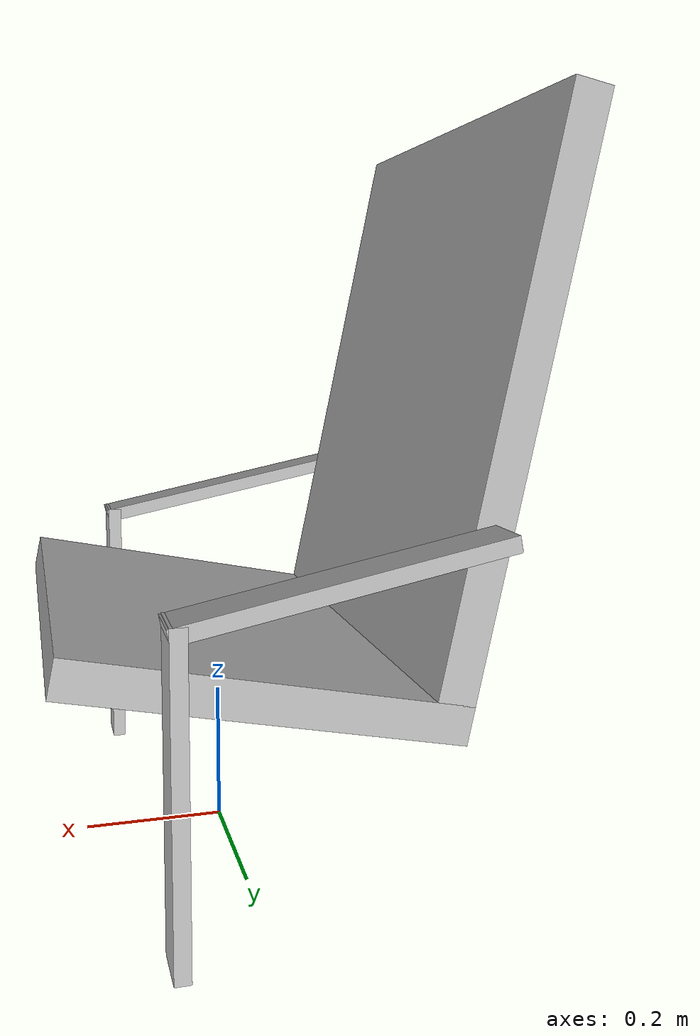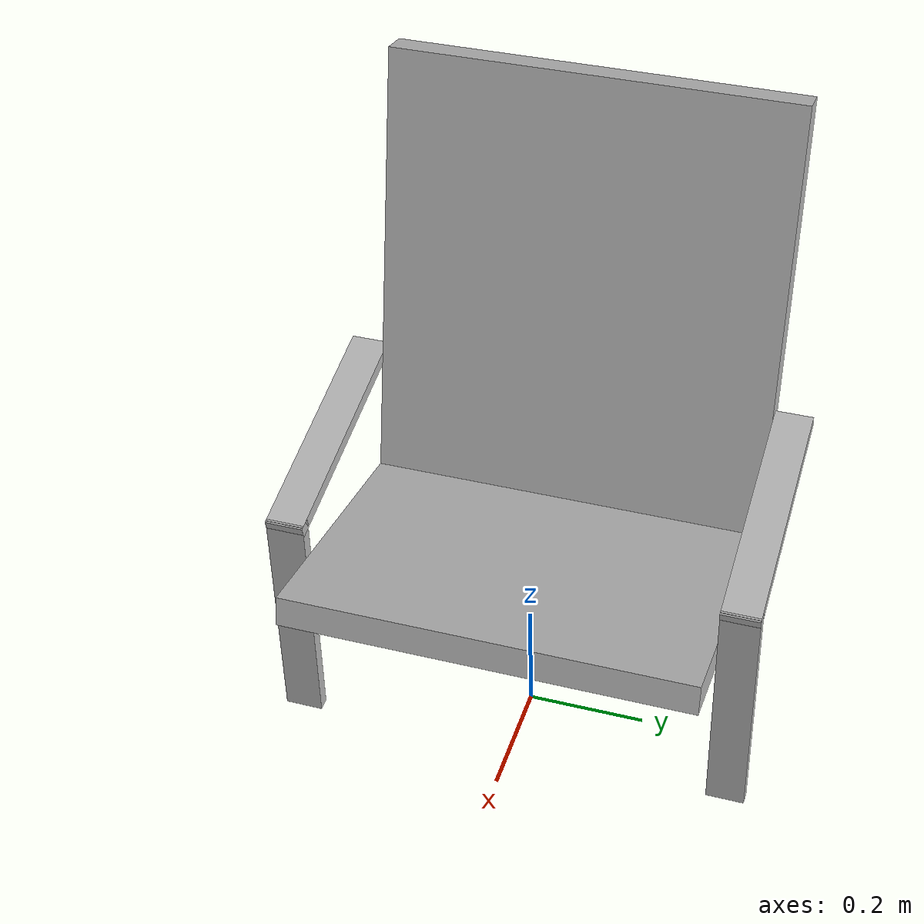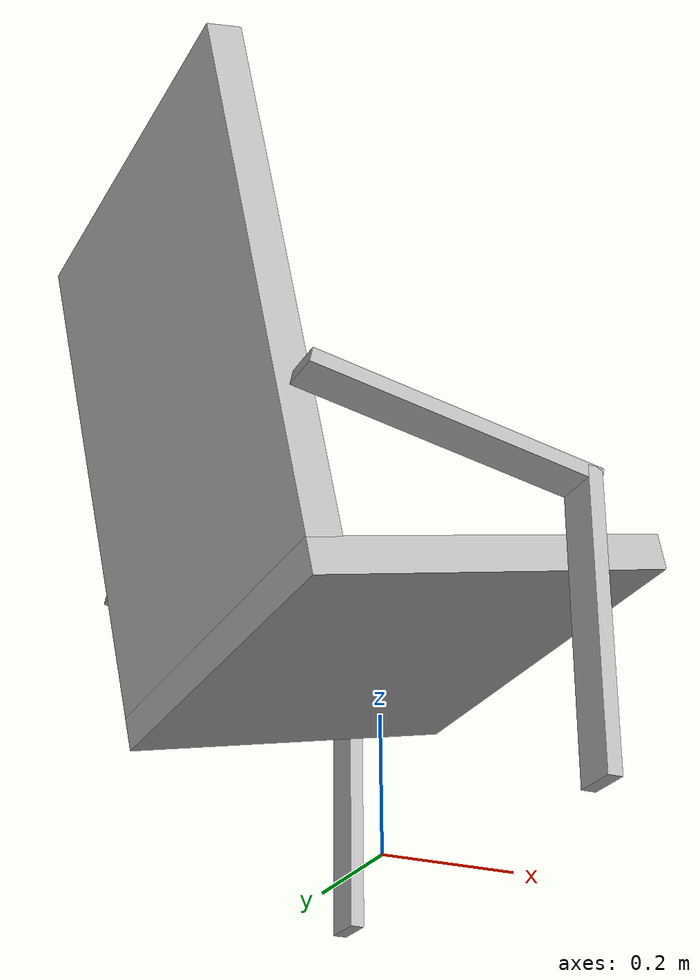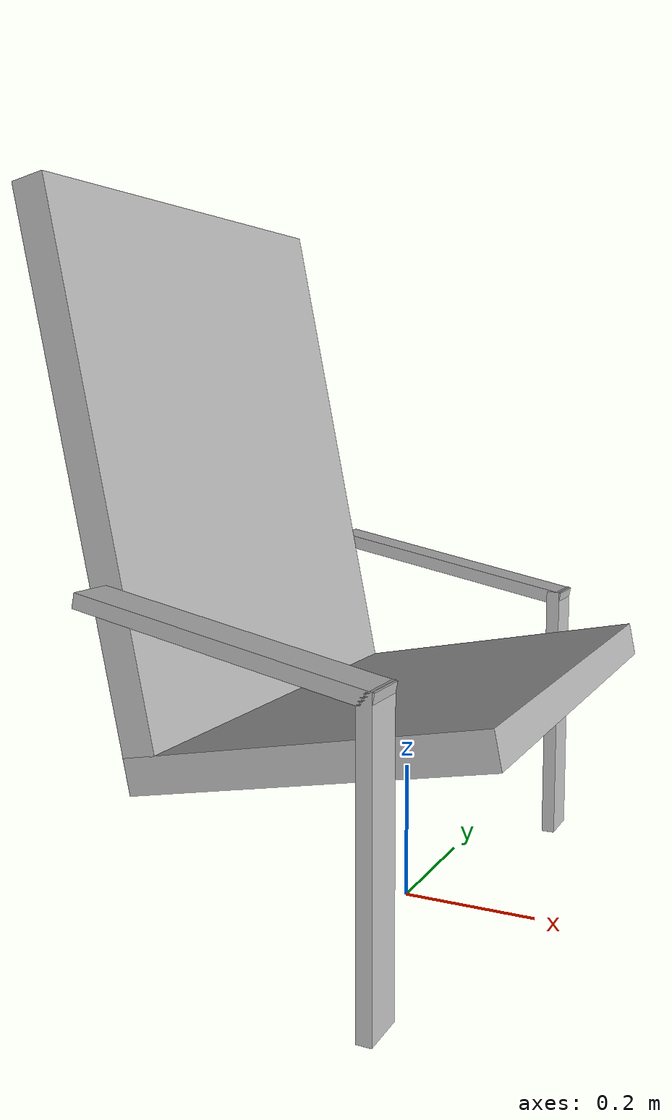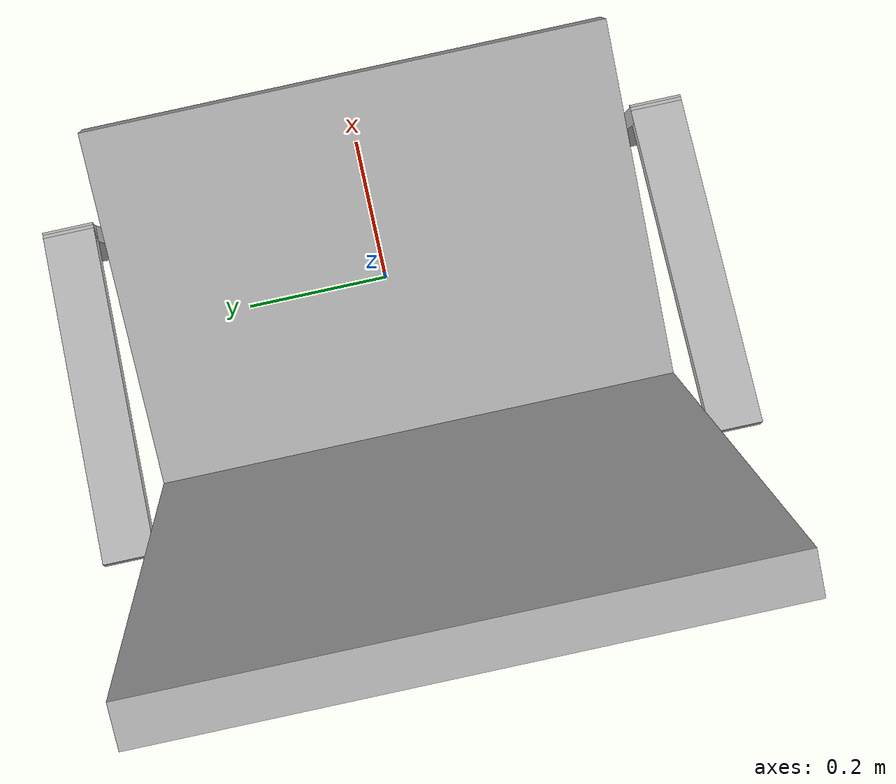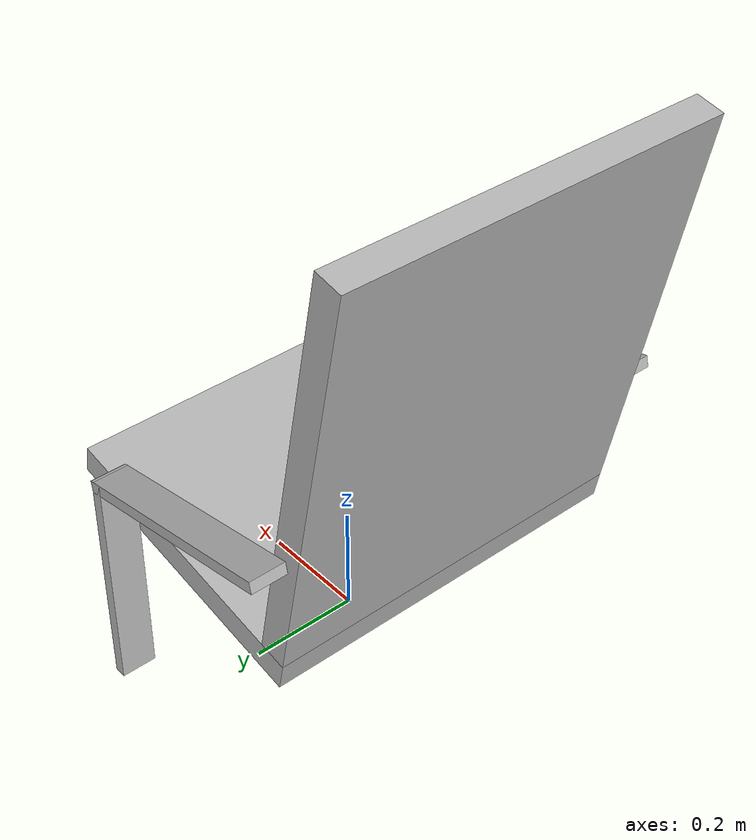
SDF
<?xml version="1.0" ?>
<sdf version="1.6">
  <model name="rpo2023/easy_chair">
    <static>true</static>
    <link name="seat_link">
      <collision name="seat_col">
        <geometry>
          <box>
            <size>0.52 0.682 0.051</size>
          </box>
        </geometry>
      </collision>
      <visual name="seat_vis">
        <geometry>
          <box>
            <size>0.52 0.682 0.051</size>
          </box>
        </geometry>
      </visual>
      <pose>0.0 0.0 0.3 0 -0.2 0</pose>
    </link>
    <link name="back_link">
      <collision name="back_col">
        <geometry>
          <box>
            <size>0.051 0.682 0.76</size>
          </box>
        </geometry>
      </collision>
      <visual name="back_vis">
        <geometry>
          <box>
            <size>0.051 0.682 0.76</size>
          </box>
        </geometry>
      </visual>
      <pose>-0.31 0.0 0.65 0 -0.2 0</pose>
    </link>
    <link name="left_leg_link">
      <collision name="left_leg_col">
        <geometry>
          <box>
            <size>0.021 0.064 0.42</size>
          </box>
        </geometry>
      </collision>
      <visual name="left_leg_vis">
        <geometry>
          <box>
            <size>0.021 0.064 0.42</size>
          </box>
        </geometry>
      </visual>
      <pose>0.1195 -0.373 0.21 0 0 0</pose>
    </link>
    <link name="right_leg_link">
      <collision name="right_leg_col">
        <geometry>
          <box>
            <size>0.021 0.064 0.42</size>
          </box>
        </geometry>
      </collision>
      <visual name="right_leg_vis">
        <geometry>
          <box>
            <size>0.021 0.064 0.42</size>
          </box>
        </geometry>
      </visual>
      <pose>0.1195 0.373 0.21 0 0 0</pose>
    </link>
    <link name="left_arm_link">
      <collision name="left_arm_col">
        <geometry>
          <box>
            <size>0.42 0.064 0.021</size>
          </box>
        </geometry>
      </collision>
      <visual name="left_arm_vis">
        <geometry>
          <box>
            <size>0.42 0.064 0.021</size>
          </box>
        </geometry>
      </visual>
      <pose>-0.075 -0.373 0.45 0 0.2 0</pose>
    </link>
    <link name="right_arm_link">
      <collision name="right_arm_col">
        <geometry>
          <box>
            <size>0.42 0.064 0.021</size>
          </box>
        </geometry>
      </collision>
      <visual name="right_arm_vis">
        <geometry>
          <box>
            <size>0.42 0.064 0.021</size>
          </box>
        </geometry>
      </visual>
      <pose>-0.075 0.373 0.45 0 0.2 0</pose>
    </link>
    <link name="on_top_of">
      <virtual_volume name="on_top_of_vv">
        <geometry>
          <box>
            <size>0.662 0.84 0.25</size>
          </box>
        </geometry>
        <pose>0.0 0.0 0.535 0 0 0</pose>
      </virtual_volume>
    </link>
    <link name="in_front_of">
      <virtual_volume name="in_front_of_vv">
        <geometry>
          <box>
            <size>0.2 0.7 0.01</size>
          </box>
        </geometry>
        <pose>0.841 0.0 0.005 0 0 0</pose>
      </virtual_volume>
    </link>
  </model>
</sdf>
